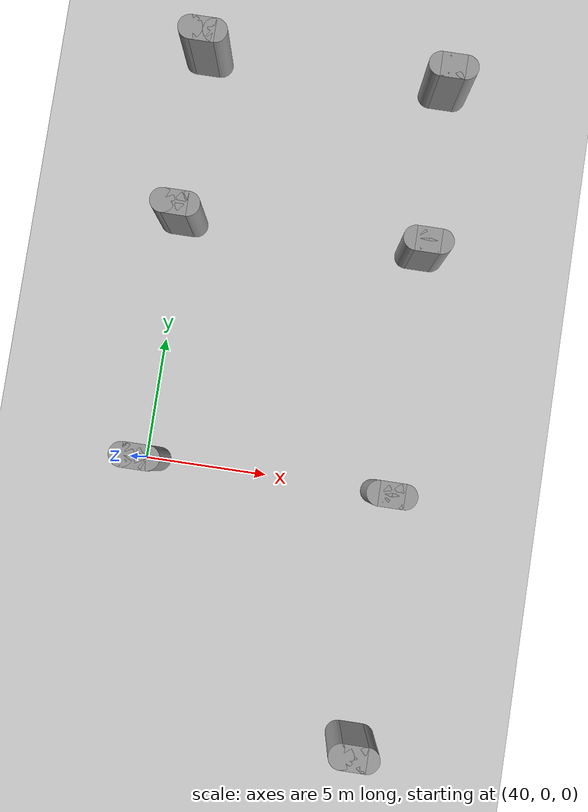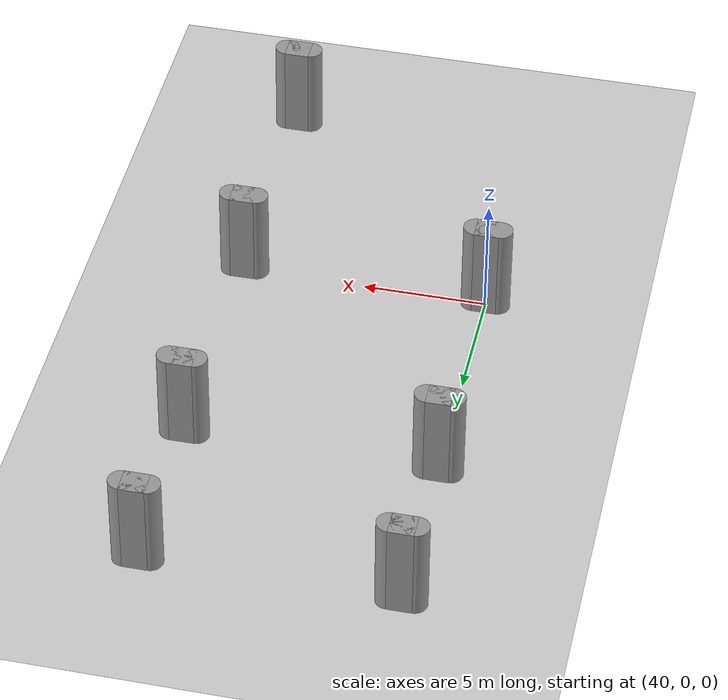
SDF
<sdf version="1.6">
 <world name="default">
  <model name="ground_plane">
   <static>1</static>
   <link name="link">
    <collision name="collision">
     <geometry><plane><normal>0 0 1</normal><size>100 100</size></plane></geometry>
     <surface><friction><ode><mu>100</mu><mu2>50</mu2></ode></friction></surface>
    </collision>
    <visual name="visual">
     <cast_shadows>0</cast_shadows>
     <geometry><plane><normal>0 0 1</normal><size>100 100</size></plane></geometry>
     <material>
      <script><uri>file://media/materials/scripts/gazebo.material</uri><name>Gazebo/Grey</name></script>
     </material>
    </visual>
   </link>
  </model>
  <model name="pillar_clone_6_clone_6">
   <link name="link_0">
    <inertial>
     <mass>1</mass>
     <inertia>
      <ixx>0.166667</ixx>
      <ixy>0</ixy>
      <ixz>0</ixz>
      <iyy>0.166667</iyy>
      <iyz>0</iyz>
      <izz>0.166667</izz>
     </inertia>
    </inertial>
    <kinematic>1</kinematic>
    <visual name="visual">
     <geometry><box><size>1 1 4</size></box></geometry>
     <material>
      <lighting>1</lighting>
      <script><uri>file://media/materials/scripts/gazebo.material</uri><name>Gazebo/Grey</name></script>
      <shader type="pixel"><normal_map>__default__</normal_map></shader>
      <ambient>0.3 0.3 0.3 1</ambient>
      <diffuse>0.7 0.7 0.7 1</diffuse>
      <specular>0.01 0.01 0.01 1</specular>
      <emissive>0 0 0 1</emissive>
     </material>
    </visual>
    <collision name="collision">
     <geometry><box><size>1 1 4</size></box></geometry>
     <surface>
      <friction>
       <ode><mu>1</mu><mu2>1</mu2><fdir1>0 0 0</fdir1><slip1>0</slip1><slip2>0</slip2></ode>
       <torsional>
        <coefficient>1</coefficient>
        <patch_radius>0</patch_radius>
        <surface_radius>0</surface_radius>
        <use_patch_radius>1</use_patch_radius>
        <ode><slip>0</slip></ode>
       </torsional>
      </friction>
      <bounce><restitution_coefficient>0</restitution_coefficient><threshold>1e+06</threshold></bounce>
      <contact>
       <collide_without_contact>0</collide_without_contact>
       <collide_without_contact_bitmask>1</collide_without_contact_bitmask>
       <collide_bitmask>1</collide_bitmask>
       <ode>
        <soft_cfm>0</soft_cfm>
        <soft_erp>0.2</soft_erp>
        <kp>1e+13</kp>
        <kd>1</kd>
        <max_vel>0.01</max_vel>
        <min_depth>0</min_depth>
       </ode>
       <bullet>
        <split_impulse>1</split_impulse>
        <split_impulse_penetration_threshold>-0.01</split_impulse_penetration_threshold>
        <soft_cfm>0</soft_cfm>
        <soft_erp>0.2</soft_erp>
        <kp>1e+13</kp>
        <kd>1</kd>
       </bullet>
      </contact>
     </surface>
    </collision>
   </link>
   <link name="link_1">
    <inertial>
     <mass>1</mass>
     <inertia><ixx>0.145833</ixx><ixy>0</ixy><ixz>0</ixz><iyy>0.145833</iyy><iyz>0</iyz><izz>0.125</izz></inertia>
    </inertial>
    <pose>-0.5 0 0 0 -0 0</pose>
    <kinematic>1</kinematic>
    <visual name="visual">
     <geometry><cylinder><radius>0.5</radius><length>4</length></cylinder></geometry>
     <material>
      <lighting>1</lighting>
      <script><uri>file://media/materials/scripts/gazebo.material</uri><name>Gazebo/Grey</name></script>
      <shader type="pixel"><normal_map>__default__</normal_map></shader>
      <ambient>0.3 0.3 0.3 1</ambient>
      <diffuse>0.7 0.7 0.7 1</diffuse>
      <specular>0.01 0.01 0.01 1</specular>
      <emissive>0 0 0 1</emissive>
     </material>
    </visual>
    <collision name="collision">
     <geometry><cylinder><radius>0.5</radius><length>4</length></cylinder></geometry>
     <surface>
      <friction>
       <ode><mu>1</mu><mu2>1</mu2><fdir1>0 0 0</fdir1><slip1>0</slip1><slip2>0</slip2></ode>
       <torsional>
        <coefficient>1</coefficient>
        <patch_radius>0</patch_radius>
        <surface_radius>0</surface_radius>
        <use_patch_radius>1</use_patch_radius>
        <ode><slip>0</slip></ode>
       </torsional>
      </friction>
      <bounce><restitution_coefficient>0</restitution_coefficient><threshold>1e+06</threshold></bounce>
      <contact>
       <collide_without_contact>0</collide_without_contact>
       <collide_without_contact_bitmask>1</collide_without_contact_bitmask>
       <collide_bitmask>1</collide_bitmask>
       <ode>
        <soft_cfm>0</soft_cfm>
        <soft_erp>0.2</soft_erp>
        <kp>1e+13</kp>
        <kd>1</kd>
        <max_vel>0.01</max_vel>
        <min_depth>0</min_depth>
       </ode>
       <bullet>
        <split_impulse>1</split_impulse>
        <split_impulse_penetration_threshold>-0.01</split_impulse_penetration_threshold>
        <soft_cfm>0</soft_cfm>
        <soft_erp>0.2</soft_erp>
        <kp>1e+13</kp>
        <kd>1</kd>
       </bullet>
      </contact>
     </surface>
    </collision>
   </link>
   <link name="link_2">
    <inertial>
     <mass>1</mass>
     <inertia><ixx>0.145833</ixx><ixy>0</ixy><ixz>0</ixz><iyy>0.145833</iyy><iyz>0</iyz><izz>0.125</izz></inertia>
    </inertial>
    <pose>0.5 0 0 0 -0 0</pose>
    <kinematic>1</kinematic>
    <visual name="visual">
     <geometry><cylinder><radius>0.5</radius><length>4</length></cylinder></geometry>
     <material>
      <lighting>1</lighting>
      <script><uri>file://media/materials/scripts/gazebo.material</uri><name>Gazebo/Grey</name></script>
      <shader type="pixel"><normal_map>__default__</normal_map></shader>
      <ambient>0.3 0.3 0.3 1</ambient>
      <diffuse>0.7 0.7 0.7 1</diffuse>
      <specular>0.01 0.01 0.01 1</specular>
      <emissive>0 0 0 1</emissive>
     </material>
    </visual>
    <collision name="collision">
     <geometry><cylinder><radius>0.5</radius><length>4</length></cylinder></geometry>
     <surface>
      <friction>
       <ode><mu>1</mu><mu2>1</mu2><fdir1>0 0 0</fdir1><slip1>0</slip1><slip2>0</slip2></ode>
       <torsional>
        <coefficient>1</coefficient>
        <patch_radius>0</patch_radius>
        <surface_radius>0</surface_radius>
        <use_patch_radius>1</use_patch_radius>
        <ode><slip>0</slip></ode>
       </torsional>
      </friction>
      <bounce><restitution_coefficient>0</restitution_coefficient><threshold>1e+06</threshold></bounce>
      <contact>
       <collide_without_contact>0</collide_without_contact>
       <collide_without_contact_bitmask>1</collide_without_contact_bitmask>
       <collide_bitmask>1</collide_bitmask>
       <ode>
        <soft_cfm>0</soft_cfm>
        <soft_erp>0.2</soft_erp>
        <kp>1e+13</kp>
        <kd>1</kd>
        <max_vel>0.01</max_vel>
        <min_depth>0</min_depth>
       </ode>
       <bullet>
        <split_impulse>1</split_impulse>
        <split_impulse_penetration_threshold>-0.01</split_impulse_penetration_threshold>
        <soft_cfm>0</soft_cfm>
        <soft_erp>0.2</soft_erp>
        <kp>1e+13</kp>
        <kd>1</kd>
       </bullet>
      </contact>
     </surface>
    </collision>
   </link>
   <static>1</static>
   <pose>40 0 2 0 -0 0</pose>
  </model>
  <model name="pillar_clone_6_clone_7">
   <link name="link_0">
    <inertial>
     <mass>1</mass>
     <inertia>
      <ixx>0.166667</ixx>
      <ixy>0</ixy>
      <ixz>0</ixz>
      <iyy>0.166667</iyy>
      <iyz>0</iyz>
      <izz>0.166667</izz>
     </inertia>
    </inertial>
    <kinematic>1</kinematic>
    <visual name="visual">
     <geometry><box><size>1 1 4</size></box></geometry>
     <material>
      <lighting>1</lighting>
      <script><uri>file://media/materials/scripts/gazebo.material</uri><name>Gazebo/Grey</name></script>
      <shader type="pixel"><normal_map>__default__</normal_map></shader>
      <ambient>0.3 0.3 0.3 1</ambient>
      <diffuse>0.7 0.7 0.7 1</diffuse>
      <specular>0.01 0.01 0.01 1</specular>
      <emissive>0 0 0 1</emissive>
     </material>
    </visual>
    <collision name="collision">
     <geometry><box><size>1 1 4</size></box></geometry>
     <surface>
      <friction>
       <ode><mu>1</mu><mu2>1</mu2><fdir1>0 0 0</fdir1><slip1>0</slip1><slip2>0</slip2></ode>
       <torsional>
        <coefficient>1</coefficient>
        <patch_radius>0</patch_radius>
        <surface_radius>0</surface_radius>
        <use_patch_radius>1</use_patch_radius>
        <ode><slip>0</slip></ode>
       </torsional>
      </friction>
      <bounce><restitution_coefficient>0</restitution_coefficient><threshold>1e+06</threshold></bounce>
      <contact>
       <collide_without_contact>0</collide_without_contact>
       <collide_without_contact_bitmask>1</collide_without_contact_bitmask>
       <collide_bitmask>1</collide_bitmask>
       <ode>
        <soft_cfm>0</soft_cfm>
        <soft_erp>0.2</soft_erp>
        <kp>1e+13</kp>
        <kd>1</kd>
        <max_vel>0.01</max_vel>
        <min_depth>0</min_depth>
       </ode>
       <bullet>
        <split_impulse>1</split_impulse>
        <split_impulse_penetration_threshold>-0.01</split_impulse_penetration_threshold>
        <soft_cfm>0</soft_cfm>
        <soft_erp>0.2</soft_erp>
        <kp>1e+13</kp>
        <kd>1</kd>
       </bullet>
      </contact>
     </surface>
    </collision>
   </link>
   <link name="link_1">
    <inertial>
     <mass>1</mass>
     <inertia><ixx>0.145833</ixx><ixy>0</ixy><ixz>0</ixz><iyy>0.145833</iyy><iyz>0</iyz><izz>0.125</izz></inertia>
    </inertial>
    <pose>-0.5 0 0 0 -0 0</pose>
    <kinematic>1</kinematic>
    <visual name="visual">
     <geometry><cylinder><radius>0.5</radius><length>4</length></cylinder></geometry>
     <material>
      <lighting>1</lighting>
      <script><uri>file://media/materials/scripts/gazebo.material</uri><name>Gazebo/Grey</name></script>
      <shader type="pixel"><normal_map>__default__</normal_map></shader>
      <ambient>0.3 0.3 0.3 1</ambient>
      <diffuse>0.7 0.7 0.7 1</diffuse>
      <specular>0.01 0.01 0.01 1</specular>
      <emissive>0 0 0 1</emissive>
     </material>
    </visual>
    <collision name="collision">
     <geometry><cylinder><radius>0.5</radius><length>4</length></cylinder></geometry>
     <surface>
      <friction>
       <ode><mu>1</mu><mu2>1</mu2><fdir1>0 0 0</fdir1><slip1>0</slip1><slip2>0</slip2></ode>
       <torsional>
        <coefficient>1</coefficient>
        <patch_radius>0</patch_radius>
        <surface_radius>0</surface_radius>
        <use_patch_radius>1</use_patch_radius>
        <ode><slip>0</slip></ode>
       </torsional>
      </friction>
      <bounce><restitution_coefficient>0</restitution_coefficient><threshold>1e+06</threshold></bounce>
      <contact>
       <collide_without_contact>0</collide_without_contact>
       <collide_without_contact_bitmask>1</collide_without_contact_bitmask>
       <collide_bitmask>1</collide_bitmask>
       <ode>
        <soft_cfm>0</soft_cfm>
        <soft_erp>0.2</soft_erp>
        <kp>1e+13</kp>
        <kd>1</kd>
        <max_vel>0.01</max_vel>
        <min_depth>0</min_depth>
       </ode>
       <bullet>
        <split_impulse>1</split_impulse>
        <split_impulse_penetration_threshold>-0.01</split_impulse_penetration_threshold>
        <soft_cfm>0</soft_cfm>
        <soft_erp>0.2</soft_erp>
        <kp>1e+13</kp>
        <kd>1</kd>
       </bullet>
      </contact>
     </surface>
    </collision>
   </link>
   <link name="link_2">
    <inertial>
     <mass>1</mass>
     <inertia><ixx>0.145833</ixx><ixy>0</ixy><ixz>0</ixz><iyy>0.145833</iyy><iyz>0</iyz><izz>0.125</izz></inertia>
    </inertial>
    <pose>0.5 0 0 0 -0 0</pose>
    <kinematic>1</kinematic>
    <visual name="visual">
     <geometry><cylinder><radius>0.5</radius><length>4</length></cylinder></geometry>
     <material>
      <lighting>1</lighting>
      <script><uri>file://media/materials/scripts/gazebo.material</uri><name>Gazebo/Grey</name></script>
      <shader type="pixel"><normal_map>__default__</normal_map></shader>
      <ambient>0.3 0.3 0.3 1</ambient>
      <diffuse>0.7 0.7 0.7 1</diffuse>
      <specular>0.01 0.01 0.01 1</specular>
      <emissive>0 0 0 1</emissive>
     </material>
    </visual>
    <collision name="collision">
     <geometry><cylinder><radius>0.5</radius><length>4</length></cylinder></geometry>
     <surface>
      <friction>
       <ode><mu>1</mu><mu2>1</mu2><fdir1>0 0 0</fdir1><slip1>0</slip1><slip2>0</slip2></ode>
       <torsional>
        <coefficient>1</coefficient>
        <patch_radius>0</patch_radius>
        <surface_radius>0</surface_radius>
        <use_patch_radius>1</use_patch_radius>
        <ode><slip>0</slip></ode>
       </torsional>
      </friction>
      <bounce><restitution_coefficient>0</restitution_coefficient><threshold>1e+06</threshold></bounce>
      <contact>
       <collide_without_contact>0</collide_without_contact>
       <collide_without_contact_bitmask>1</collide_without_contact_bitmask>
       <collide_bitmask>1</collide_bitmask>
       <ode>
        <soft_cfm>0</soft_cfm>
        <soft_erp>0.2</soft_erp>
        <kp>1e+13</kp>
        <kd>1</kd>
        <max_vel>0.01</max_vel>
        <min_depth>0</min_depth>
       </ode>
       <bullet>
        <split_impulse>1</split_impulse>
        <split_impulse_penetration_threshold>-0.01</split_impulse_penetration_threshold>
        <soft_cfm>0</soft_cfm>
        <soft_erp>0.2</soft_erp>
        <kp>1e+13</kp>
        <kd>1</kd>
       </bullet>
      </contact>
     </surface>
    </collision>
   </link>
   <static>1</static>
   <pose>50 0 2 0 -0 0</pose>
  </model>
  <model name="pillar_clone_6_clone_14">
   <link name="link_0">
    <inertial>
     <mass>1</mass>
     <inertia>
      <ixx>0.166667</ixx>
      <ixy>0</ixy>
      <ixz>0</ixz>
      <iyy>0.166667</iyy>
      <iyz>0</iyz>
      <izz>0.166667</izz>
     </inertia>
    </inertial>
    <kinematic>1</kinematic>
    <visual name="visual">
     <geometry><box><size>1 1 4</size></box></geometry>
     <material>
      <lighting>1</lighting>
      <script><uri>file://media/materials/scripts/gazebo.material</uri><name>Gazebo/Grey</name></script>
      <shader type="pixel"><normal_map>__default__</normal_map></shader>
      <ambient>0.3 0.3 0.3 1</ambient>
      <diffuse>0.7 0.7 0.7 1</diffuse>
      <specular>0.01 0.01 0.01 1</specular>
      <emissive>0 0 0 1</emissive>
     </material>
    </visual>
    <collision name="collision">
     <geometry><box><size>1 1 4</size></box></geometry>
     <surface>
      <friction>
       <ode><mu>1</mu><mu2>1</mu2><fdir1>0 0 0</fdir1><slip1>0</slip1><slip2>0</slip2></ode>
       <torsional>
        <coefficient>1</coefficient>
        <patch_radius>0</patch_radius>
        <surface_radius>0</surface_radius>
        <use_patch_radius>1</use_patch_radius>
        <ode><slip>0</slip></ode>
       </torsional>
      </friction>
      <bounce><restitution_coefficient>0</restitution_coefficient><threshold>1e+06</threshold></bounce>
      <contact>
       <collide_without_contact>0</collide_without_contact>
       <collide_without_contact_bitmask>1</collide_without_contact_bitmask>
       <collide_bitmask>1</collide_bitmask>
       <ode>
        <soft_cfm>0</soft_cfm>
        <soft_erp>0.2</soft_erp>
        <kp>1e+13</kp>
        <kd>1</kd>
        <max_vel>0.01</max_vel>
        <min_depth>0</min_depth>
       </ode>
       <bullet>
        <split_impulse>1</split_impulse>
        <split_impulse_penetration_threshold>-0.01</split_impulse_penetration_threshold>
        <soft_cfm>0</soft_cfm>
        <soft_erp>0.2</soft_erp>
        <kp>1e+13</kp>
        <kd>1</kd>
       </bullet>
      </contact>
     </surface>
    </collision>
   </link>
   <link name="link_1">
    <inertial>
     <mass>1</mass>
     <inertia><ixx>0.145833</ixx><ixy>0</ixy><ixz>0</ixz><iyy>0.145833</iyy><iyz>0</iyz><izz>0.125</izz></inertia>
    </inertial>
    <pose>-0.5 0 0 0 -0 0</pose>
    <kinematic>1</kinematic>
    <visual name="visual">
     <geometry><cylinder><radius>0.5</radius><length>4</length></cylinder></geometry>
     <material>
      <lighting>1</lighting>
      <script><uri>file://media/materials/scripts/gazebo.material</uri><name>Gazebo/Grey</name></script>
      <shader type="pixel"><normal_map>__default__</normal_map></shader>
      <ambient>0.3 0.3 0.3 1</ambient>
      <diffuse>0.7 0.7 0.7 1</diffuse>
      <specular>0.01 0.01 0.01 1</specular>
      <emissive>0 0 0 1</emissive>
     </material>
    </visual>
    <collision name="collision">
     <geometry><cylinder><radius>0.5</radius><length>4</length></cylinder></geometry>
     <surface>
      <friction>
       <ode><mu>1</mu><mu2>1</mu2><fdir1>0 0 0</fdir1><slip1>0</slip1><slip2>0</slip2></ode>
       <torsional>
        <coefficient>1</coefficient>
        <patch_radius>0</patch_radius>
        <surface_radius>0</surface_radius>
        <use_patch_radius>1</use_patch_radius>
        <ode><slip>0</slip></ode>
       </torsional>
      </friction>
      <bounce><restitution_coefficient>0</restitution_coefficient><threshold>1e+06</threshold></bounce>
      <contact>
       <collide_without_contact>0</collide_without_contact>
       <collide_without_contact_bitmask>1</collide_without_contact_bitmask>
       <collide_bitmask>1</collide_bitmask>
       <ode>
        <soft_cfm>0</soft_cfm>
        <soft_erp>0.2</soft_erp>
        <kp>1e+13</kp>
        <kd>1</kd>
        <max_vel>0.01</max_vel>
        <min_depth>0</min_depth>
       </ode>
       <bullet>
        <split_impulse>1</split_impulse>
        <split_impulse_penetration_threshold>-0.01</split_impulse_penetration_threshold>
        <soft_cfm>0</soft_cfm>
        <soft_erp>0.2</soft_erp>
        <kp>1e+13</kp>
        <kd>1</kd>
       </bullet>
      </contact>
     </surface>
    </collision>
   </link>
   <link name="link_2">
    <inertial>
     <mass>1</mass>
     <inertia><ixx>0.145833</ixx><ixy>0</ixy><ixz>0</ixz><iyy>0.145833</iyy><iyz>0</iyz><izz>0.125</izz></inertia>
    </inertial>
    <pose>0.5 0 0 0 -0 0</pose>
    <kinematic>1</kinematic>
    <visual name="visual">
     <geometry><cylinder><radius>0.5</radius><length>4</length></cylinder></geometry>
     <material>
      <lighting>1</lighting>
      <script><uri>file://media/materials/scripts/gazebo.material</uri><name>Gazebo/Grey</name></script>
      <shader type="pixel"><normal_map>__default__</normal_map></shader>
      <ambient>0.3 0.3 0.3 1</ambient>
      <diffuse>0.7 0.7 0.7 1</diffuse>
      <specular>0.01 0.01 0.01 1</specular>
      <emissive>0 0 0 1</emissive>
     </material>
    </visual>
    <collision name="collision">
     <geometry><cylinder><radius>0.5</radius><length>4</length></cylinder></geometry>
     <surface>
      <friction>
       <ode><mu>1</mu><mu2>1</mu2><fdir1>0 0 0</fdir1><slip1>0</slip1><slip2>0</slip2></ode>
       <torsional>
        <coefficient>1</coefficient>
        <patch_radius>0</patch_radius>
        <surface_radius>0</surface_radius>
        <use_patch_radius>1</use_patch_radius>
        <ode><slip>0</slip></ode>
       </torsional>
      </friction>
      <bounce><restitution_coefficient>0</restitution_coefficient><threshold>1e+06</threshold></bounce>
      <contact>
       <collide_without_contact>0</collide_without_contact>
       <collide_without_contact_bitmask>1</collide_without_contact_bitmask>
       <collide_bitmask>1</collide_bitmask>
       <ode>
        <soft_cfm>0</soft_cfm>
        <soft_erp>0.2</soft_erp>
        <kp>1e+13</kp>
        <kd>1</kd>
        <max_vel>0.01</max_vel>
        <min_depth>0</min_depth>
       </ode>
       <bullet>
        <split_impulse>1</split_impulse>
        <split_impulse_penetration_threshold>-0.01</split_impulse_penetration_threshold>
        <soft_cfm>0</soft_cfm>
        <soft_erp>0.2</soft_erp>
        <kp>1e+13</kp>
        <kd>1</kd>
       </bullet>
      </contact>
     </surface>
    </collision>
   </link>
   <static>1</static>
   <pose>50 -10 2 0 -0 0</pose>
  </model>
  <model name="pillar_clone_6_clone_20">
   <link name="link_0">
    <inertial>
     <mass>1</mass>
     <inertia>
      <ixx>0.166667</ixx>
      <ixy>0</ixy>
      <ixz>0</ixz>
      <iyy>0.166667</iyy>
      <iyz>0</iyz>
      <izz>0.166667</izz>
     </inertia>
    </inertial>
    <kinematic>1</kinematic>
    <visual name="visual">
     <geometry><box><size>1 1 4</size></box></geometry>
     <material>
      <lighting>1</lighting>
      <script><uri>file://media/materials/scripts/gazebo.material</uri><name>Gazebo/Grey</name></script>
      <shader type="pixel"><normal_map>__default__</normal_map></shader>
      <ambient>0.3 0.3 0.3 1</ambient>
      <diffuse>0.7 0.7 0.7 1</diffuse>
      <specular>0.01 0.01 0.01 1</specular>
      <emissive>0 0 0 1</emissive>
     </material>
    </visual>
    <collision name="collision">
     <geometry><box><size>1 1 4</size></box></geometry>
     <surface>
      <friction>
       <ode><mu>1</mu><mu2>1</mu2><fdir1>0 0 0</fdir1><slip1>0</slip1><slip2>0</slip2></ode>
       <torsional>
        <coefficient>1</coefficient>
        <patch_radius>0</patch_radius>
        <surface_radius>0</surface_radius>
        <use_patch_radius>1</use_patch_radius>
        <ode><slip>0</slip></ode>
       </torsional>
      </friction>
      <bounce><restitution_coefficient>0</restitution_coefficient><threshold>1e+06</threshold></bounce>
      <contact>
       <collide_without_contact>0</collide_without_contact>
       <collide_without_contact_bitmask>1</collide_without_contact_bitmask>
       <collide_bitmask>1</collide_bitmask>
       <ode>
        <soft_cfm>0</soft_cfm>
        <soft_erp>0.2</soft_erp>
        <kp>1e+13</kp>
        <kd>1</kd>
        <max_vel>0.01</max_vel>
        <min_depth>0</min_depth>
       </ode>
       <bullet>
        <split_impulse>1</split_impulse>
        <split_impulse_penetration_threshold>-0.01</split_impulse_penetration_threshold>
        <soft_cfm>0</soft_cfm>
        <soft_erp>0.2</soft_erp>
        <kp>1e+13</kp>
        <kd>1</kd>
       </bullet>
      </contact>
     </surface>
    </collision>
   </link>
   <link name="link_1">
    <inertial>
     <mass>1</mass>
     <inertia><ixx>0.145833</ixx><ixy>0</ixy><ixz>0</ixz><iyy>0.145833</iyy><iyz>0</iyz><izz>0.125</izz></inertia>
    </inertial>
    <pose>-0.5 0 0 0 -0 0</pose>
    <kinematic>1</kinematic>
    <visual name="visual">
     <geometry><cylinder><radius>0.5</radius><length>4</length></cylinder></geometry>
     <material>
      <lighting>1</lighting>
      <script><uri>file://media/materials/scripts/gazebo.material</uri><name>Gazebo/Grey</name></script>
      <shader type="pixel"><normal_map>__default__</normal_map></shader>
      <ambient>0.3 0.3 0.3 1</ambient>
      <diffuse>0.7 0.7 0.7 1</diffuse>
      <specular>0.01 0.01 0.01 1</specular>
      <emissive>0 0 0 1</emissive>
     </material>
    </visual>
    <collision name="collision">
     <geometry><cylinder><radius>0.5</radius><length>4</length></cylinder></geometry>
     <surface>
      <friction>
       <ode><mu>1</mu><mu2>1</mu2><fdir1>0 0 0</fdir1><slip1>0</slip1><slip2>0</slip2></ode>
       <torsional>
        <coefficient>1</coefficient>
        <patch_radius>0</patch_radius>
        <surface_radius>0</surface_radius>
        <use_patch_radius>1</use_patch_radius>
        <ode><slip>0</slip></ode>
       </torsional>
      </friction>
      <bounce><restitution_coefficient>0</restitution_coefficient><threshold>1e+06</threshold></bounce>
      <contact>
       <collide_without_contact>0</collide_without_contact>
       <collide_without_contact_bitmask>1</collide_without_contact_bitmask>
       <collide_bitmask>1</collide_bitmask>
       <ode>
        <soft_cfm>0</soft_cfm>
        <soft_erp>0.2</soft_erp>
        <kp>1e+13</kp>
        <kd>1</kd>
        <max_vel>0.01</max_vel>
        <min_depth>0</min_depth>
       </ode>
       <bullet>
        <split_impulse>1</split_impulse>
        <split_impulse_penetration_threshold>-0.01</split_impulse_penetration_threshold>
        <soft_cfm>0</soft_cfm>
        <soft_erp>0.2</soft_erp>
        <kp>1e+13</kp>
        <kd>1</kd>
       </bullet>
      </contact>
     </surface>
    </collision>
   </link>
   <link name="link_2">
    <inertial>
     <mass>1</mass>
     <inertia><ixx>0.145833</ixx><ixy>0</ixy><ixz>0</ixz><iyy>0.145833</iyy><iyz>0</iyz><izz>0.125</izz></inertia>
    </inertial>
    <pose>0.5 0 0 0 -0 0</pose>
    <kinematic>1</kinematic>
    <visual name="visual">
     <geometry><cylinder><radius>0.5</radius><length>4</length></cylinder></geometry>
     <material>
      <lighting>1</lighting>
      <script><uri>file://media/materials/scripts/gazebo.material</uri><name>Gazebo/Grey</name></script>
      <shader type="pixel"><normal_map>__default__</normal_map></shader>
      <ambient>0.3 0.3 0.3 1</ambient>
      <diffuse>0.7 0.7 0.7 1</diffuse>
      <specular>0.01 0.01 0.01 1</specular>
      <emissive>0 0 0 1</emissive>
     </material>
    </visual>
    <collision name="collision">
     <geometry><cylinder><radius>0.5</radius><length>4</length></cylinder></geometry>
     <surface>
      <friction>
       <ode><mu>1</mu><mu2>1</mu2><fdir1>0 0 0</fdir1><slip1>0</slip1><slip2>0</slip2></ode>
       <torsional>
        <coefficient>1</coefficient>
        <patch_radius>0</patch_radius>
        <surface_radius>0</surface_radius>
        <use_patch_radius>1</use_patch_radius>
        <ode><slip>0</slip></ode>
       </torsional>
      </friction>
      <bounce><restitution_coefficient>0</restitution_coefficient><threshold>1e+06</threshold></bounce>
      <contact>
       <collide_without_contact>0</collide_without_contact>
       <collide_without_contact_bitmask>1</collide_without_contact_bitmask>
       <collide_bitmask>1</collide_bitmask>
       <ode>
        <soft_cfm>0</soft_cfm>
        <soft_erp>0.2</soft_erp>
        <kp>1e+13</kp>
        <kd>1</kd>
        <max_vel>0.01</max_vel>
        <min_depth>0</min_depth>
       </ode>
       <bullet>
        <split_impulse>1</split_impulse>
        <split_impulse_penetration_threshold>-0.01</split_impulse_penetration_threshold>
        <soft_cfm>0</soft_cfm>
        <soft_erp>0.2</soft_erp>
        <kp>1e+13</kp>
        <kd>1</kd>
       </bullet>
      </contact>
     </surface>
    </collision>
   </link>
   <static>1</static>
   <pose>40 10 2 0 -0 0</pose>
  </model>
  <model name="pillar_clone_6_clone_21">
   <link name="link_0">
    <inertial>
     <mass>1</mass>
     <inertia>
      <ixx>0.166667</ixx>
      <ixy>0</ixy>
      <ixz>0</ixz>
      <iyy>0.166667</iyy>
      <iyz>0</iyz>
      <izz>0.166667</izz>
     </inertia>
    </inertial>
    <kinematic>1</kinematic>
    <visual name="visual">
     <geometry><box><size>1 1 4</size></box></geometry>
     <material>
      <lighting>1</lighting>
      <script><uri>file://media/materials/scripts/gazebo.material</uri><name>Gazebo/Grey</name></script>
      <shader type="pixel"><normal_map>__default__</normal_map></shader>
      <ambient>0.3 0.3 0.3 1</ambient>
      <diffuse>0.7 0.7 0.7 1</diffuse>
      <specular>0.01 0.01 0.01 1</specular>
      <emissive>0 0 0 1</emissive>
     </material>
    </visual>
    <collision name="collision">
     <geometry><box><size>1 1 4</size></box></geometry>
     <surface>
      <friction>
       <ode><mu>1</mu><mu2>1</mu2><fdir1>0 0 0</fdir1><slip1>0</slip1><slip2>0</slip2></ode>
       <torsional>
        <coefficient>1</coefficient>
        <patch_radius>0</patch_radius>
        <surface_radius>0</surface_radius>
        <use_patch_radius>1</use_patch_radius>
        <ode><slip>0</slip></ode>
       </torsional>
      </friction>
      <bounce><restitution_coefficient>0</restitution_coefficient><threshold>1e+06</threshold></bounce>
      <contact>
       <collide_without_contact>0</collide_without_contact>
       <collide_without_contact_bitmask>1</collide_without_contact_bitmask>
       <collide_bitmask>1</collide_bitmask>
       <ode>
        <soft_cfm>0</soft_cfm>
        <soft_erp>0.2</soft_erp>
        <kp>1e+13</kp>
        <kd>1</kd>
        <max_vel>0.01</max_vel>
        <min_depth>0</min_depth>
       </ode>
       <bullet>
        <split_impulse>1</split_impulse>
        <split_impulse_penetration_threshold>-0.01</split_impulse_penetration_threshold>
        <soft_cfm>0</soft_cfm>
        <soft_erp>0.2</soft_erp>
        <kp>1e+13</kp>
        <kd>1</kd>
       </bullet>
      </contact>
     </surface>
    </collision>
   </link>
   <link name="link_1">
    <inertial>
     <mass>1</mass>
     <inertia><ixx>0.145833</ixx><ixy>0</ixy><ixz>0</ixz><iyy>0.145833</iyy><iyz>0</iyz><izz>0.125</izz></inertia>
    </inertial>
    <pose>-0.5 0 0 0 -0 0</pose>
    <kinematic>1</kinematic>
    <visual name="visual">
     <geometry><cylinder><radius>0.5</radius><length>4</length></cylinder></geometry>
     <material>
      <lighting>1</lighting>
      <script><uri>file://media/materials/scripts/gazebo.material</uri><name>Gazebo/Grey</name></script>
      <shader type="pixel"><normal_map>__default__</normal_map></shader>
      <ambient>0.3 0.3 0.3 1</ambient>
      <diffuse>0.7 0.7 0.7 1</diffuse>
      <specular>0.01 0.01 0.01 1</specular>
      <emissive>0 0 0 1</emissive>
     </material>
    </visual>
    <collision name="collision">
     <geometry><cylinder><radius>0.5</radius><length>4</length></cylinder></geometry>
     <surface>
      <friction>
       <ode><mu>1</mu><mu2>1</mu2><fdir1>0 0 0</fdir1><slip1>0</slip1><slip2>0</slip2></ode>
       <torsional>
        <coefficient>1</coefficient>
        <patch_radius>0</patch_radius>
        <surface_radius>0</surface_radius>
        <use_patch_radius>1</use_patch_radius>
        <ode><slip>0</slip></ode>
       </torsional>
      </friction>
      <bounce><restitution_coefficient>0</restitution_coefficient><threshold>1e+06</threshold></bounce>
      <contact>
       <collide_without_contact>0</collide_without_contact>
       <collide_without_contact_bitmask>1</collide_without_contact_bitmask>
       <collide_bitmask>1</collide_bitmask>
       <ode>
        <soft_cfm>0</soft_cfm>
        <soft_erp>0.2</soft_erp>
        <kp>1e+13</kp>
        <kd>1</kd>
        <max_vel>0.01</max_vel>
        <min_depth>0</min_depth>
       </ode>
       <bullet>
        <split_impulse>1</split_impulse>
        <split_impulse_penetration_threshold>-0.01</split_impulse_penetration_threshold>
        <soft_cfm>0</soft_cfm>
        <soft_erp>0.2</soft_erp>
        <kp>1e+13</kp>
        <kd>1</kd>
       </bullet>
      </contact>
     </surface>
    </collision>
   </link>
   <link name="link_2">
    <inertial>
     <mass>1</mass>
     <inertia><ixx>0.145833</ixx><ixy>0</ixy><ixz>0</ixz><iyy>0.145833</iyy><iyz>0</iyz><izz>0.125</izz></inertia>
    </inertial>
    <pose>0.5 0 0 0 -0 0</pose>
    <kinematic>1</kinematic>
    <visual name="visual">
     <geometry><cylinder><radius>0.5</radius><length>4</length></cylinder></geometry>
     <material>
      <lighting>1</lighting>
      <script><uri>file://media/materials/scripts/gazebo.material</uri><name>Gazebo/Grey</name></script>
      <shader type="pixel"><normal_map>__default__</normal_map></shader>
      <ambient>0.3 0.3 0.3 1</ambient>
      <diffuse>0.7 0.7 0.7 1</diffuse>
      <specular>0.01 0.01 0.01 1</specular>
      <emissive>0 0 0 1</emissive>
     </material>
    </visual>
    <collision name="collision">
     <geometry><cylinder><radius>0.5</radius><length>4</length></cylinder></geometry>
     <surface>
      <friction>
       <ode><mu>1</mu><mu2>1</mu2><fdir1>0 0 0</fdir1><slip1>0</slip1><slip2>0</slip2></ode>
       <torsional>
        <coefficient>1</coefficient>
        <patch_radius>0</patch_radius>
        <surface_radius>0</surface_radius>
        <use_patch_radius>1</use_patch_radius>
        <ode><slip>0</slip></ode>
       </torsional>
      </friction>
      <bounce><restitution_coefficient>0</restitution_coefficient><threshold>1e+06</threshold></bounce>
      <contact>
       <collide_without_contact>0</collide_without_contact>
       <collide_without_contact_bitmask>1</collide_without_contact_bitmask>
       <collide_bitmask>1</collide_bitmask>
       <ode>
        <soft_cfm>0</soft_cfm>
        <soft_erp>0.2</soft_erp>
        <kp>1e+13</kp>
        <kd>1</kd>
        <max_vel>0.01</max_vel>
        <min_depth>0</min_depth>
       </ode>
       <bullet>
        <split_impulse>1</split_impulse>
        <split_impulse_penetration_threshold>-0.01</split_impulse_penetration_threshold>
        <soft_cfm>0</soft_cfm>
        <soft_erp>0.2</soft_erp>
        <kp>1e+13</kp>
        <kd>1</kd>
       </bullet>
      </contact>
     </surface>
    </collision>
   </link>
   <static>1</static>
   <pose>50 10 2 0 -0 0</pose>
  </model>
  <model name="pillar_clone_6_clone_26">
   <link name="link_0">
    <inertial>
     <mass>1</mass>
     <inertia>
      <ixx>0.166667</ixx>
      <ixy>0</ixy>
      <ixz>0</ixz>
      <iyy>0.166667</iyy>
      <iyz>0</iyz>
      <izz>0.166667</izz>
     </inertia>
    </inertial>
    <kinematic>1</kinematic>
    <visual name="visual">
     <geometry><box><size>1 1 4</size></box></geometry>
     <material>
      <lighting>1</lighting>
      <script><uri>file://media/materials/scripts/gazebo.material</uri><name>Gazebo/Grey</name></script>
      <shader type="pixel"><normal_map>__default__</normal_map></shader>
      <ambient>0.3 0.3 0.3 1</ambient>
      <diffuse>0.7 0.7 0.7 1</diffuse>
      <specular>0.01 0.01 0.01 1</specular>
      <emissive>0 0 0 1</emissive>
     </material>
    </visual>
    <collision name="collision">
     <geometry><box><size>1 1 4</size></box></geometry>
     <surface>
      <friction>
       <ode><mu>1</mu><mu2>1</mu2><fdir1>0 0 0</fdir1><slip1>0</slip1><slip2>0</slip2></ode>
       <torsional>
        <coefficient>1</coefficient>
        <patch_radius>0</patch_radius>
        <surface_radius>0</surface_radius>
        <use_patch_radius>1</use_patch_radius>
        <ode><slip>0</slip></ode>
       </torsional>
      </friction>
      <bounce><restitution_coefficient>0</restitution_coefficient><threshold>1e+06</threshold></bounce>
      <contact>
       <collide_without_contact>0</collide_without_contact>
       <collide_without_contact_bitmask>1</collide_without_contact_bitmask>
       <collide_bitmask>1</collide_bitmask>
       <ode>
        <soft_cfm>0</soft_cfm>
        <soft_erp>0.2</soft_erp>
        <kp>1e+13</kp>
        <kd>1</kd>
        <max_vel>0.01</max_vel>
        <min_depth>0</min_depth>
       </ode>
       <bullet>
        <split_impulse>1</split_impulse>
        <split_impulse_penetration_threshold>-0.01</split_impulse_penetration_threshold>
        <soft_cfm>0</soft_cfm>
        <soft_erp>0.2</soft_erp>
        <kp>1e+13</kp>
        <kd>1</kd>
       </bullet>
      </contact>
     </surface>
    </collision>
   </link>
   <link name="link_1">
    <inertial>
     <mass>1</mass>
     <inertia><ixx>0.145833</ixx><ixy>0</ixy><ixz>0</ixz><iyy>0.145833</iyy><iyz>0</iyz><izz>0.125</izz></inertia>
    </inertial>
    <pose>-0.5 0 0 0 -0 0</pose>
    <kinematic>1</kinematic>
    <visual name="visual">
     <geometry><cylinder><radius>0.5</radius><length>4</length></cylinder></geometry>
     <material>
      <lighting>1</lighting>
      <script><uri>file://media/materials/scripts/gazebo.material</uri><name>Gazebo/Grey</name></script>
      <shader type="pixel"><normal_map>__default__</normal_map></shader>
      <ambient>0.3 0.3 0.3 1</ambient>
      <diffuse>0.7 0.7 0.7 1</diffuse>
      <specular>0.01 0.01 0.01 1</specular>
      <emissive>0 0 0 1</emissive>
     </material>
    </visual>
    <collision name="collision">
     <geometry><cylinder><radius>0.5</radius><length>4</length></cylinder></geometry>
     <surface>
      <friction>
       <ode><mu>1</mu><mu2>1</mu2><fdir1>0 0 0</fdir1><slip1>0</slip1><slip2>0</slip2></ode>
       <torsional>
        <coefficient>1</coefficient>
        <patch_radius>0</patch_radius>
        <surface_radius>0</surface_radius>
        <use_patch_radius>1</use_patch_radius>
        <ode><slip>0</slip></ode>
       </torsional>
      </friction>
      <bounce><restitution_coefficient>0</restitution_coefficient><threshold>1e+06</threshold></bounce>
      <contact>
       <collide_without_contact>0</collide_without_contact>
       <collide_without_contact_bitmask>1</collide_without_contact_bitmask>
       <collide_bitmask>1</collide_bitmask>
       <ode>
        <soft_cfm>0</soft_cfm>
        <soft_erp>0.2</soft_erp>
        <kp>1e+13</kp>
        <kd>1</kd>
        <max_vel>0.01</max_vel>
        <min_depth>0</min_depth>
       </ode>
       <bullet>
        <split_impulse>1</split_impulse>
        <split_impulse_penetration_threshold>-0.01</split_impulse_penetration_threshold>
        <soft_cfm>0</soft_cfm>
        <soft_erp>0.2</soft_erp>
        <kp>1e+13</kp>
        <kd>1</kd>
       </bullet>
      </contact>
     </surface>
    </collision>
   </link>
   <link name="link_2">
    <inertial>
     <mass>1</mass>
     <inertia><ixx>0.145833</ixx><ixy>0</ixy><ixz>0</ixz><iyy>0.145833</iyy><iyz>0</iyz><izz>0.125</izz></inertia>
    </inertial>
    <pose>0.5 0 0 0 -0 0</pose>
    <kinematic>1</kinematic>
    <visual name="visual">
     <geometry><cylinder><radius>0.5</radius><length>4</length></cylinder></geometry>
     <material>
      <lighting>1</lighting>
      <script><uri>file://media/materials/scripts/gazebo.material</uri><name>Gazebo/Grey</name></script>
      <shader type="pixel"><normal_map>__default__</normal_map></shader>
      <ambient>0.3 0.3 0.3 1</ambient>
      <diffuse>0.7 0.7 0.7 1</diffuse>
      <specular>0.01 0.01 0.01 1</specular>
      <emissive>0 0 0 1</emissive>
     </material>
    </visual>
    <collision name="collision">
     <geometry><cylinder><radius>0.5</radius><length>4</length></cylinder></geometry>
     <surface>
      <friction>
       <ode><mu>1</mu><mu2>1</mu2><fdir1>0 0 0</fdir1><slip1>0</slip1><slip2>0</slip2></ode>
       <torsional>
        <coefficient>1</coefficient>
        <patch_radius>0</patch_radius>
        <surface_radius>0</surface_radius>
        <use_patch_radius>1</use_patch_radius>
        <ode><slip>0</slip></ode>
       </torsional>
      </friction>
      <bounce><restitution_coefficient>0</restitution_coefficient><threshold>1e+06</threshold></bounce>
      <contact>
       <collide_without_contact>0</collide_without_contact>
       <collide_without_contact_bitmask>1</collide_without_contact_bitmask>
       <collide_bitmask>1</collide_bitmask>
       <ode>
        <soft_cfm>0</soft_cfm>
        <soft_erp>0.2</soft_erp>
        <kp>1e+13</kp>
        <kd>1</kd>
        <max_vel>0.01</max_vel>
        <min_depth>0</min_depth>
       </ode>
       <bullet>
        <split_impulse>1</split_impulse>
        <split_impulse_penetration_threshold>-0.01</split_impulse_penetration_threshold>
        <soft_cfm>0</soft_cfm>
        <soft_erp>0.2</soft_erp>
        <kp>1e+13</kp>
        <kd>1</kd>
       </bullet>
      </contact>
     </surface>
    </collision>
   </link>
   <static>1</static>
   <pose>40 17 2 0 -0 0</pose>
  </model>
  <model name="pillar_clone_6_clone_27">
   <link name="link_0">
    <inertial>
     <mass>1</mass>
     <inertia>
      <ixx>0.166667</ixx>
      <ixy>0</ixy>
      <ixz>0</ixz>
      <iyy>0.166667</iyy>
      <iyz>0</iyz>
      <izz>0.166667</izz>
     </inertia>
    </inertial>
    <kinematic>1</kinematic>
    <visual name="visual">
     <geometry><box><size>1 1 4</size></box></geometry>
     <material>
      <lighting>1</lighting>
      <script><uri>file://media/materials/scripts/gazebo.material</uri><name>Gazebo/Grey</name></script>
      <shader type="pixel"><normal_map>__default__</normal_map></shader>
      <ambient>0.3 0.3 0.3 1</ambient>
      <diffuse>0.7 0.7 0.7 1</diffuse>
      <specular>0.01 0.01 0.01 1</specular>
      <emissive>0 0 0 1</emissive>
     </material>
    </visual>
    <collision name="collision">
     <geometry><box><size>1 1 4</size></box></geometry>
     <surface>
      <friction>
       <ode><mu>1</mu><mu2>1</mu2><fdir1>0 0 0</fdir1><slip1>0</slip1><slip2>0</slip2></ode>
       <torsional>
        <coefficient>1</coefficient>
        <patch_radius>0</patch_radius>
        <surface_radius>0</surface_radius>
        <use_patch_radius>1</use_patch_radius>
        <ode><slip>0</slip></ode>
       </torsional>
      </friction>
      <bounce><restitution_coefficient>0</restitution_coefficient><threshold>1e+06</threshold></bounce>
      <contact>
       <collide_without_contact>0</collide_without_contact>
       <collide_without_contact_bitmask>1</collide_without_contact_bitmask>
       <collide_bitmask>1</collide_bitmask>
       <ode>
        <soft_cfm>0</soft_cfm>
        <soft_erp>0.2</soft_erp>
        <kp>1e+13</kp>
        <kd>1</kd>
        <max_vel>0.01</max_vel>
        <min_depth>0</min_depth>
       </ode>
       <bullet>
        <split_impulse>1</split_impulse>
        <split_impulse_penetration_threshold>-0.01</split_impulse_penetration_threshold>
        <soft_cfm>0</soft_cfm>
        <soft_erp>0.2</soft_erp>
        <kp>1e+13</kp>
        <kd>1</kd>
       </bullet>
      </contact>
     </surface>
    </collision>
   </link>
   <link name="link_1">
    <inertial>
     <mass>1</mass>
     <inertia><ixx>0.145833</ixx><ixy>0</ixy><ixz>0</ixz><iyy>0.145833</iyy><iyz>0</iyz><izz>0.125</izz></inertia>
    </inertial>
    <pose>-0.5 0 0 0 -0 0</pose>
    <kinematic>1</kinematic>
    <visual name="visual">
     <geometry><cylinder><radius>0.5</radius><length>4</length></cylinder></geometry>
     <material>
      <lighting>1</lighting>
      <script><uri>file://media/materials/scripts/gazebo.material</uri><name>Gazebo/Grey</name></script>
      <shader type="pixel"><normal_map>__default__</normal_map></shader>
      <ambient>0.3 0.3 0.3 1</ambient>
      <diffuse>0.7 0.7 0.7 1</diffuse>
      <specular>0.01 0.01 0.01 1</specular>
      <emissive>0 0 0 1</emissive>
     </material>
    </visual>
    <collision name="collision">
     <geometry><cylinder><radius>0.5</radius><length>4</length></cylinder></geometry>
     <surface>
      <friction>
       <ode><mu>1</mu><mu2>1</mu2><fdir1>0 0 0</fdir1><slip1>0</slip1><slip2>0</slip2></ode>
       <torsional>
        <coefficient>1</coefficient>
        <patch_radius>0</patch_radius>
        <surface_radius>0</surface_radius>
        <use_patch_radius>1</use_patch_radius>
        <ode><slip>0</slip></ode>
       </torsional>
      </friction>
      <bounce><restitution_coefficient>0</restitution_coefficient><threshold>1e+06</threshold></bounce>
      <contact>
       <collide_without_contact>0</collide_without_contact>
       <collide_without_contact_bitmask>1</collide_without_contact_bitmask>
       <collide_bitmask>1</collide_bitmask>
       <ode>
        <soft_cfm>0</soft_cfm>
        <soft_erp>0.2</soft_erp>
        <kp>1e+13</kp>
        <kd>1</kd>
        <max_vel>0.01</max_vel>
        <min_depth>0</min_depth>
       </ode>
       <bullet>
        <split_impulse>1</split_impulse>
        <split_impulse_penetration_threshold>-0.01</split_impulse_penetration_threshold>
        <soft_cfm>0</soft_cfm>
        <soft_erp>0.2</soft_erp>
        <kp>1e+13</kp>
        <kd>1</kd>
       </bullet>
      </contact>
     </surface>
    </collision>
   </link>
   <link name="link_2">
    <inertial>
     <mass>1</mass>
     <inertia><ixx>0.145833</ixx><ixy>0</ixy><ixz>0</ixz><iyy>0.145833</iyy><iyz>0</iyz><izz>0.125</izz></inertia>
    </inertial>
    <pose>0.5 0 0 0 -0 0</pose>
    <kinematic>1</kinematic>
    <visual name="visual">
     <geometry><cylinder><radius>0.5</radius><length>4</length></cylinder></geometry>
     <material>
      <lighting>1</lighting>
      <script><uri>file://media/materials/scripts/gazebo.material</uri><name>Gazebo/Grey</name></script>
      <shader type="pixel"><normal_map>__default__</normal_map></shader>
      <ambient>0.3 0.3 0.3 1</ambient>
      <diffuse>0.7 0.7 0.7 1</diffuse>
      <specular>0.01 0.01 0.01 1</specular>
      <emissive>0 0 0 1</emissive>
     </material>
    </visual>
    <collision name="collision">
     <geometry><cylinder><radius>0.5</radius><length>4</length></cylinder></geometry>
     <surface>
      <friction>
       <ode><mu>1</mu><mu2>1</mu2><fdir1>0 0 0</fdir1><slip1>0</slip1><slip2>0</slip2></ode>
       <torsional>
        <coefficient>1</coefficient>
        <patch_radius>0</patch_radius>
        <surface_radius>0</surface_radius>
        <use_patch_radius>1</use_patch_radius>
        <ode><slip>0</slip></ode>
       </torsional>
      </friction>
      <bounce><restitution_coefficient>0</restitution_coefficient><threshold>1e+06</threshold></bounce>
      <contact>
       <collide_without_contact>0</collide_without_contact>
       <collide_without_contact_bitmask>1</collide_without_contact_bitmask>
       <collide_bitmask>1</collide_bitmask>
       <ode>
        <soft_cfm>0</soft_cfm>
        <soft_erp>0.2</soft_erp>
        <kp>1e+13</kp>
        <kd>1</kd>
        <max_vel>0.01</max_vel>
        <min_depth>0</min_depth>
       </ode>
       <bullet>
        <split_impulse>1</split_impulse>
        <split_impulse_penetration_threshold>-0.01</split_impulse_penetration_threshold>
        <soft_cfm>0</soft_cfm>
        <soft_erp>0.2</soft_erp>
        <kp>1e+13</kp>
        <kd>1</kd>
       </bullet>
      </contact>
     </surface>
    </collision>
   </link>
   <static>1</static>
   <pose>50 17 2 0 -0 0</pose>
  </model>
 </world>
</sdf>
